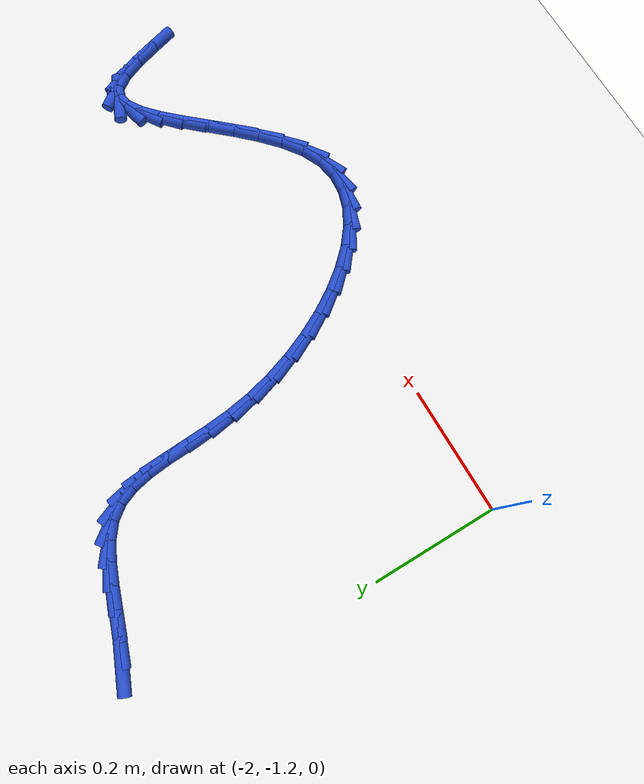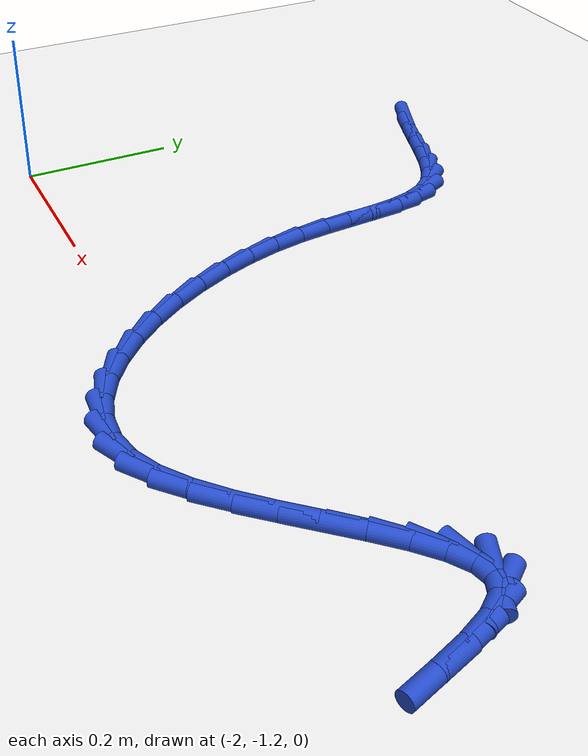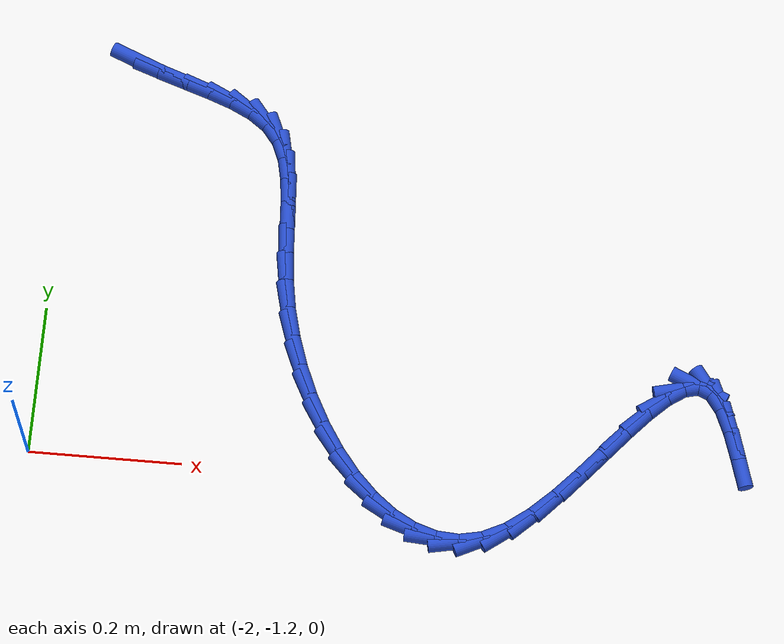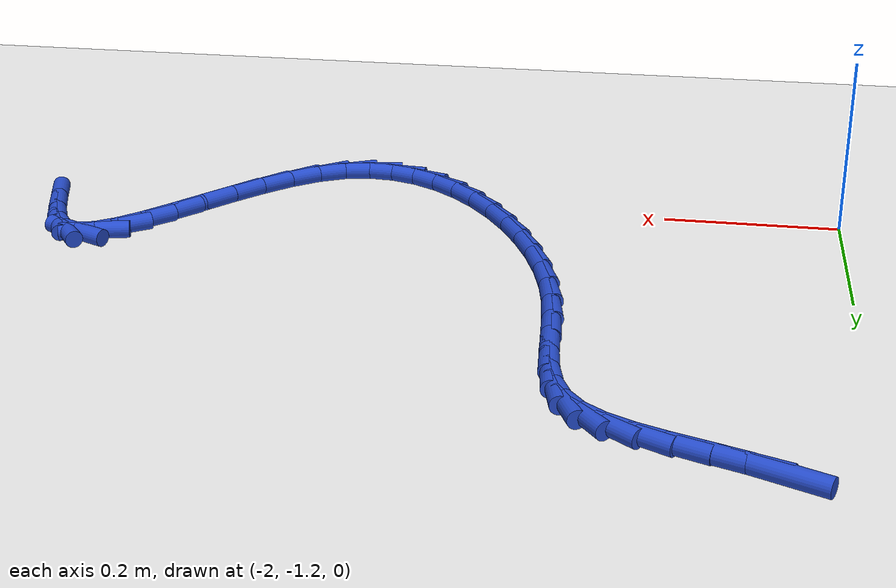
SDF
<sdf version="1.6">
 <world name="default">
  <model name="ground_plane">
   <static>1</static>
   <link name="link">
    <collision name="collision">
     <geometry><plane><normal>0 0 1</normal><size>100 100</size></plane></geometry>
     <surface><friction><ode><mu>100</mu><mu2>50</mu2></ode></friction></surface>
    </collision>
    <visual name="visual">
     <cast_shadows>0</cast_shadows>
     <geometry><plane><normal>0 0 1</normal><size>100 100</size></plane></geometry>
     <material>
      <script><uri>file://media/materials/scripts/gazebo.material</uri><name>Gazebo/WhiteGlow</name></script>
     </material>
    </visual>
   </link>
  </model>
  <model name="line">
   <link name="link_141">
    <pose>-1.915748877868359 -0.6378350076902638 0.01 0 1.57 -0.39813669396778545</pose>
    <collision name="collision">
     <geometry><cylinder><radius>0.01</radius><length>0.08</length></cylinder></geometry>
    </collision>
    <visual name="visual">
     <material>
      <script><name>Gazebo/Blue</name><uri>file://media/materials/scripts/gazebo.material</uri></script>
     </material>
     <geometry><cylinder><radius>0.01</radius><length>0.08</length></cylinder></geometry>
    </visual>
   </link>
   <link name="link_142">
    <pose>-1.8829150893552367 -0.6516448520386567 0.01 0 1.57 -0.3397191969225574</pose>
    <collision name="collision">
     <geometry><cylinder><radius>0.01</radius><length>0.08</length></cylinder></geometry>
    </collision>
    <visual name="visual">
     <material>
      <script><name>Gazebo/Blue</name><uri>file://media/materials/scripts/gazebo.material</uri></script>
     </material>
     <geometry><cylinder><radius>0.01</radius><length>0.08</length></cylinder></geometry>
    </visual>
   </link>
   <link name="link_143">
    <pose>-1.8490331317932718 -0.6636194463289576 0.01 0 1.57 -0.3283420663688</pose>
    <collision name="collision">
     <geometry><cylinder><radius>0.01</radius><length>0.08</length></cylinder></geometry>
    </collision>
    <visual name="visual">
     <material>
      <script><name>Gazebo/Blue</name><uri>file://media/materials/scripts/gazebo.material</uri></script>
     </material>
     <geometry><cylinder><radius>0.01</radius><length>0.08</length></cylinder></geometry>
    </visual>
   </link>
   <link name="link_144">
    <pose>-1.8156224999918578 -0.6750015621782965 0.01 0 1.57 -0.3657275896447229</pose>
    <collision name="collision">
     <geometry><cylinder><radius>0.01</radius><length>0.08</length></cylinder></geometry>
    </collision>
    <visual name="visual">
     <material>
      <script><name>Gazebo/Blue</name><uri>file://media/materials/scripts/gazebo.material</uri></script>
     </material>
     <geometry><cylinder><radius>0.01</radius><length>0.08</length></cylinder></geometry>
    </visual>
   </link>
   <link name="link_145">
    <pose>-1.7842026887603841 -0.6870339712038024 0.01 0 1.57 -0.46280814166327583</pose>
    <collision name="collision">
     <geometry><cylinder><radius>0.01</radius><length>0.08</length></cylinder></geometry>
    </collision>
    <visual name="visual">
     <material>
      <script><name>Gazebo/Blue</name><uri>file://media/materials/scripts/gazebo.material</uri></script>
     </material>
     <geometry><cylinder><radius>0.01</radius><length>0.08</length></cylinder></geometry>
    </visual>
   </link>
   <link name="link_146">
    <pose>-1.756293192908245 -0.7009594450226053 0.01 0 1.57 -0.6407414192629504</pose>
    <collision name="collision">
     <geometry><cylinder><radius>0.01</radius><length>0.08</length></cylinder></geometry>
    </collision>
    <visual name="visual">
     <material>
      <script><name>Gazebo/Blue</name><uri>file://media/materials/scripts/gazebo.material</uri></script>
     </material>
     <geometry><cylinder><radius>0.01</radius><length>0.08</length></cylinder></geometry>
    </visual>
   </link>
   <link name="link_147">
    <pose>-1.7334135072448302 -0.7180207552518354 0.01 0 1.57 -0.9110355380886698</pose>
    <collision name="collision">
     <geometry><cylinder><radius>0.01</radius><length>0.08</length></cylinder></geometry>
    </collision>
    <visual name="visual">
     <material>
      <script><name>Gazebo/Blue</name><uri>file://media/materials/scripts/gazebo.material</uri></script>
     </material>
     <geometry><cylinder><radius>0.01</radius><length>0.08</length></cylinder></geometry>
    </visual>
   </link>
   <link name="link_148">
    <pose>-1.716877069536478 -0.7393382432084953 0.01 0 1.57 -1.1748204426788054</pose>
    <collision name="collision">
     <geometry><cylinder><radius>0.01</radius><length>0.08</length></cylinder></geometry>
    </collision>
    <visual name="visual">
     <material>
      <script><name>Gazebo/Blue</name><uri>file://media/materials/scripts/gazebo.material</uri></script>
     </material>
     <geometry><cylinder><radius>0.01</radius><length>0.08</length></cylinder></geometry>
    </visual>
   </link>
   <link name="link_149">
    <pose>-1.7061710595787944 -0.7649471656711134 0.01 0 1.57 -1.3580901704448354</pose>
    <collision name="collision">
     <geometry><cylinder><radius>0.01</radius><length>0.08</length></cylinder></geometry>
    </collision>
    <visual name="visual">
     <material>
      <script><name>Gazebo/Blue</name><uri>file://media/materials/scripts/gazebo.material</uri></script>
     </material>
     <geometry><cylinder><radius>0.01</radius><length>0.08</length></cylinder></geometry>
    </visual>
   </link>
   <link name="link_150">
    <pose>-1.6998282423376037 -0.7943157068623753 0.01 0 1.57 -1.4651758437834688</pose>
    <collision name="collision">
     <geometry><cylinder><radius>0.01</radius><length>0.08</length></cylinder></geometry>
    </collision>
    <visual name="visual">
     <material>
      <script><name>Gazebo/Blue</name><uri>file://media/materials/scripts/gazebo.material</uri></script>
     </material>
     <geometry><cylinder><radius>0.01</radius><length>0.08</length></cylinder></geometry>
    </visual>
   </link>
   <link name="link_151">
    <pose>-1.6963730648596238 -0.8269071088524556 0.01 0 1.57 -1.5129461188483098</pose>
    <collision name="collision">
     <geometry><cylinder><radius>0.01</radius><length>0.08</length></cylinder></geometry>
    </collision>
    <visual name="visual">
     <material>
      <script><name>Gazebo/Blue</name><uri>file://media/materials/scripts/gazebo.material</uri></script>
     </material>
     <geometry><cylinder><radius>0.01</radius><length>0.08</length></cylinder></geometry>
    </visual>
   </link>
   <link name="link_152">
    <pose>-1.6943299741915714 -0.862184613711529 0.01 0 1.57 -1.5145710087415014</pose>
    <collision name="collision">
     <geometry><cylinder><radius>0.01</radius><length>0.08</length></cylinder></geometry>
    </collision>
    <visual name="visual">
     <material>
      <script><name>Gazebo/Blue</name><uri>file://media/materials/scripts/gazebo.material</uri></script>
     </material>
     <geometry><cylinder><radius>0.01</radius><length>0.08</length></cylinder></geometry>
    </visual>
   </link>
   <link name="link_153">
    <pose>-1.6922234173801647 -0.899611463509771 0.01 0 1.57 -1.4776844732806094</pose>
    <collision name="collision">
     <geometry><cylinder><radius>0.01</radius><length>0.08</length></cylinder></geometry>
    </collision>
    <visual name="visual">
     <material>
      <script><name>Gazebo/Blue</name><uri>file://media/materials/scripts/gazebo.material</uri></script>
     </material>
     <geometry><cylinder><radius>0.01</radius><length>0.08</length></cylinder></geometry>
    </visual>
   </link>
   <link name="link_154">
    <pose>-1.688577841472122 -0.9386509003173564 0.01 0 1.57 -1.4069854837124873</pose>
    <collision name="collision">
     <geometry><cylinder><radius>0.01</radius><length>0.08</length></cylinder></geometry>
    </collision>
    <visual name="visual">
     <material>
      <script><name>Gazebo/Blue</name><uri>file://media/materials/scripts/gazebo.material</uri></script>
     </material>
     <geometry><cylinder><radius>0.01</radius><length>0.08</length></cylinder></geometry>
    </visual>
   </link>
   <link name="link_155">
    <pose>-1.6819477778066425 -0.9787621254791836 0.01 0 1.57 -1.3232060243476644</pose>
    <collision name="collision">
     <geometry><cylinder><radius>0.01</radius><length>0.08</length></cylinder></geometry>
    </collision>
    <visual name="visual">
     <material>
      <script><name>Gazebo/Blue</name><uri>file://media/materials/scripts/gazebo.material</uri></script>
     </material>
     <geometry><cylinder><radius>0.01</radius><length>0.08</length></cylinder></geometry>
    </visual>
   </link>
   <link name="link_156">
    <pose>-1.6717020186468894 -1.019294974141845 0.01 0 1.57 -1.2443713738966709</pose>
    <collision name="collision">
     <geometry><cylinder><radius>0.01</radius><length>0.08</length></cylinder></geometry>
    </collision>
    <visual name="visual">
     <material>
      <script><name>Gazebo/Blue</name><uri>file://media/materials/scripts/gazebo.material</uri></script>
     </material>
     <geometry><cylinder><radius>0.01</radius><length>0.08</length></cylinder></geometry>
    </visual>
   </link>
   <link name="link_157">
    <pose>-1.658097996101397 -1.0594799251636853 0.01 0 1.57 -1.1676529676337564</pose>
    <collision name="collision">
     <geometry><cylinder><radius>0.01</radius><length>0.08</length></cylinder></geometry>
    </collision>
    <visual name="visual">
     <material>
      <script><name>Gazebo/Blue</name><uri>file://media/materials/scripts/gazebo.material</uri></script>
     </material>
     <geometry><cylinder><radius>0.01</radius><length>0.08</length></cylinder></geometry>
    </visual>
   </link>
   <link name="link_158">
    <pose>-1.6414381379951821 -1.0985414138728902 0.01 0 1.57 -1.0893982662749107</pose>
    <collision name="collision">
     <geometry><cylinder><radius>0.01</radius><length>0.08</length></cylinder></geometry>
    </collision>
    <visual name="visual">
     <material>
      <script><name>Gazebo/Blue</name><uri>file://media/materials/scripts/gazebo.material</uri></script>
     </material>
     <geometry><cylinder><radius>0.01</radius><length>0.08</length></cylinder></geometry>
    </visual>
   </link>
   <link name="link_159">
    <pose>-1.6220248721532597 -1.1357038755976454 0.01 0 1.57 -1.0057732672807587</pose>
    <collision name="collision">
     <geometry><cylinder><radius>0.01</radius><length>0.08</length></cylinder></geometry>
    </collision>
    <visual name="visual">
     <material>
      <script><name>Gazebo/Blue</name><uri>file://media/materials/scripts/gazebo.material</uri></script>
     </material>
     <geometry><cylinder><radius>0.01</radius><length>0.08</length></cylinder></geometry>
    </visual>
   </link>
   <link name="link_160">
    <pose>-1.6001606264006458 -1.1701917456661353 0.01 0 1.57 -0.9123207454091354</pose>
    <collision name="collision">
     <geometry><cylinder><radius>0.01</radius><length>0.08</length></cylinder></geometry>
    </collision>
    <visual name="visual">
     <material>
      <script><name>Gazebo/Blue</name><uri>file://media/materials/scripts/gazebo.material</uri></script>
     </material>
     <geometry><cylinder><radius>0.01</radius><length>0.08</length></cylinder></geometry>
    </visual>
   </link>
   <link name="link_161">
    <pose>-1.5761478285623565 -1.2012294594065467 0.01 0 1.57 -0.8034910073511081</pose>
    <collision name="collision">
     <geometry><cylinder><radius>0.01</radius><length>0.08</length></cylinder></geometry>
    </collision>
    <visual name="visual">
     <material>
      <script><name>Gazebo/Blue</name><uri>file://media/materials/scripts/gazebo.material</uri></script>
     </material>
     <geometry><cylinder><radius>0.01</radius><length>0.08</length></cylinder></geometry>
    </visual>
   </link>
   <link name="link_162">
    <pose>-1.5502889064634053 -1.2280414521470644 0.01 0 1.57 -0.6722574508313844</pose>
    <collision name="collision">
     <geometry><cylinder><radius>0.01</radius><length>0.08</length></cylinder></geometry>
    </collision>
    <visual name="visual">
     <material>
      <script><name>Gazebo/Blue</name><uri>file://media/materials/scripts/gazebo.material</uri></script>
     </material>
     <geometry><cylinder><radius>0.01</radius><length>0.08</length></cylinder></geometry>
    </visual>
   </link>
   <link name="link_163">
    <pose>-1.5228862879288112 -1.249852159215873 0.01 0 1.57 -0.5103097050251828</pose>
    <collision name="collision">
     <geometry><cylinder><radius>0.01</radius><length>0.08</length></cylinder></geometry>
    </collision>
    <visual name="visual">
     <material>
      <script><name>Gazebo/Blue</name><uri>file://media/materials/scripts/gazebo.material</uri></script>
     </material>
     <geometry><cylinder><radius>0.01</radius><length>0.08</length></cylinder></geometry>
    </visual>
   </link>
   <link name="link_164">
    <pose>-1.4942424007835884 -1.265886015941158 0.01 0 1.57 -0.3101618729458923</pose>
    <collision name="collision">
     <geometry><cylinder><radius>0.01</radius><length>0.08</length></cylinder></geometry>
    </collision>
    <visual name="visual">
     <material>
      <script><name>Gazebo/Blue</name><uri>file://media/materials/scripts/gazebo.material</uri></script>
     </material>
     <geometry><cylinder><radius>0.01</radius><length>0.08</length></cylinder></geometry>
    </visual>
   </link>
   <link name="link_165">
    <pose>-1.464659672852752 -1.2753674576511052 0.01 0 1.57 -0.07114126297625253</pose>
    <collision name="collision">
     <geometry><cylinder><radius>0.01</radius><length>0.08</length></cylinder></geometry>
    </collision>
    <visual name="visual">
     <material>
      <script><name>Gazebo/Blue</name><uri>file://media/materials/scripts/gazebo.material</uri></script>
     </material>
     <geometry><cylinder><radius>0.01</radius><length>0.08</length></cylinder></geometry>
    </visual>
   </link>
   <link name="link_166">
    <pose>-1.4344405319613185 -1.2775209196739 0.01 0 1.57 0.19233804229493395</pose>
    <collision name="collision">
     <geometry><cylinder><radius>0.01</radius><length>0.08</length></cylinder></geometry>
    </collision>
    <visual name="visual">
     <material>
      <script><name>Gazebo/Blue</name><uri>file://media/materials/scripts/gazebo.material</uri></script>
     </material>
     <geometry><cylinder><radius>0.01</radius><length>0.08</length></cylinder></geometry>
    </visual>
   </link>
   <link name="link_167">
    <pose>-1.4038874059343034 -1.2715708373377275 0.01 0 1.57 0.4479589299067039</pose>
    <collision name="collision">
     <geometry><cylinder><radius>0.01</radius><length>0.08</length></cylinder></geometry>
    </collision>
    <visual name="visual">
     <material>
      <script><name>Gazebo/Blue</name><uri>file://media/materials/scripts/gazebo.material</uri></script>
     </material>
     <geometry><cylinder><radius>0.01</radius><length>0.08</length></cylinder></geometry>
    </visual>
   </link>
   <link name="link_168">
    <pose>-1.3733003415359244 -1.2568725231787434 0.01 0 1.57 0.636106298609566</pose>
    <collision name="collision">
     <geometry><cylinder><radius>0.01</radius><length>0.08</length></cylinder></geometry>
    </collision>
    <visual name="visual">
     <material>
      <script><name>Gazebo/Blue</name><uri>file://media/materials/scripts/gazebo.material</uri></script>
     </material>
     <geometry><cylinder><radius>0.01</radius><length>0.08</length></cylinder></geometry>
    </visual>
   </link>
   <link name="link_169">
    <pose>-1.3429488865104984 -1.2344576965567289 0.01 0 1.57 0.752062088042691</pose>
    <collision name="collision">
     <geometry><cylinder><radius>0.01</radius><length>0.08</length></cylinder></geometry>
    </collision>
    <visual name="visual">
     <material>
      <script><name>Gazebo/Blue</name><uri>file://media/materials/scripts/gazebo.material</uri></script>
     </material>
     <geometry><cylinder><radius>0.01</radius><length>0.08</length></cylinder></geometry>
    </visual>
   </link>
   <link name="link_170">
    <pose>-1.3130814847701207 -1.2065180684790293 0.01 0 1.57 0.8203960953758486</pose>
    <collision name="collision">
     <geometry><cylinder><radius>0.01</radius><length>0.08</length></cylinder></geometry>
    </collision>
    <visual name="visual">
     <material>
      <script><name>Gazebo/Blue</name><uri>file://media/materials/scripts/gazebo.material</uri></script>
     </material>
     <geometry><cylinder><radius>0.01</radius><length>0.08</length></cylinder></geometry>
    </visual>
   </link>
   <link name="link_171">
    <pose>-1.2839461584443763 -1.1752685336186715 0.01 0 1.57 0.8545329916321949</pose>
    <collision name="collision">
     <geometry><cylinder><radius>0.01</radius><length>0.08</length></cylinder></geometry>
    </collision>
    <visual name="visual">
     <material>
      <script><name>Gazebo/Blue</name><uri>file://media/materials/scripts/gazebo.material</uri></script>
     </material>
     <geometry><cylinder><radius>0.01</radius><length>0.08</length></cylinder></geometry>
    </visual>
   </link>
   <link name="link_172">
    <pose>-1.2557909296628484 -1.1429239866486776 0.01 0 1.57 0.8591664560421899</pose>
    <collision name="collision">
     <geometry><cylinder><radius>0.01</radius><length>0.08</length></cylinder></geometry>
    </collision>
    <visual name="visual">
     <material>
      <script><name>Gazebo/Blue</name><uri>file://media/materials/scripts/gazebo.material</uri></script>
     </material>
     <geometry><cylinder><radius>0.01</radius><length>0.08</length></cylinder></geometry>
    </visual>
   </link>
   <link name="link_173">
    <pose>-1.2288638205551212 -1.1116993222420728 0.01 0 1.57 0.8310896394774674</pose>
    <collision name="collision">
     <geometry><cylinder><radius>0.01</radius><length>0.08</length></cylinder></geometry>
    </collision>
    <visual name="visual">
     <material>
      <script><name>Gazebo/Blue</name><uri>file://media/materials/scripts/gazebo.material</uri></script>
     </material>
     <geometry><cylinder><radius>0.01</radius><length>0.08</length></cylinder></geometry>
    </visual>
   </link>
   <link name="link_174">
    <pose>-1.2034128532507782 -1.0838094350718805 0.01 0 1.57 0.7553078809649043</pose>
    <collision name="collision">
     <geometry><cylinder><radius>0.01</radius><length>0.08</length></cylinder></geometry>
    </collision>
    <visual name="visual">
     <material>
      <script><name>Gazebo/Blue</name><uri>file://media/materials/scripts/gazebo.material</uri></script>
     </material>
     <geometry><cylinder><radius>0.01</radius><length>0.08</length></cylinder></geometry>
    </visual>
   </link>
   <link name="link_175">
    <pose>-1.179686049879403 -1.0614692198111255 0.01 0 1.57 0.5903084944244039</pose>
    <collision name="collision">
     <geometry><cylinder><radius>0.01</radius><length>0.08</length></cylinder></geometry>
    </collision>
    <visual name="visual">
     <material>
      <script><name>Gazebo/Blue</name><uri>file://media/materials/scripts/gazebo.material</uri></script>
     </material>
     <geometry><cylinder><radius>0.01</radius><length>0.08</length></cylinder></geometry>
    </visual>
   </link>
   <link name="link_176">
    <pose>-1.1579314325705794 -1.0468935711328318 0.01 0 1.57 0.23108367578131236</pose>
    <collision name="collision">
     <geometry><cylinder><radius>0.01</radius><length>0.08</length></cylinder></geometry>
    </collision>
    <visual name="visual">
     <material>
      <script><name>Gazebo/Blue</name><uri>file://media/materials/scripts/gazebo.material</uri></script>
     </material>
     <geometry><cylinder><radius>0.01</radius><length>0.08</length></cylinder></geometry>
    </visual>
   </link>
   <link name="link_177">
    <pose>-1.1383970234538905 -1.042297383710023 0.01 0 1.57 -0.41871036421918817</pose>
    <collision name="collision">
     <geometry><cylinder><radius>0.01</radius><length>0.08</length></cylinder></geometry>
    </collision>
    <visual name="visual">
     <material>
      <script><name>Gazebo/Blue</name><uri>file://media/materials/scripts/gazebo.material</uri></script>
     </material>
     <geometry><cylinder><radius>0.01</radius><length>0.08</length></cylinder></geometry>
    </visual>
   </link>
   <link name="link_178">
    <pose>-1.121330371761175 -1.0498924978864048 0.01 0 1.57 -0.9520196052500299</pose>
    <collision name="collision">
     <geometry><cylinder><radius>0.01</radius><length>0.08</length></cylinder></geometry>
    </collision>
    <visual name="visual">
     <material>
      <script><name>Gazebo/Blue</name><uri>file://media/materials/scripts/gazebo.material</uri></script>
     </material>
     <geometry><cylinder><radius>0.01</radius><length>0.08</length></cylinder></geometry>
    </visual>
   </link>
   <link name="link_179">
    <pose>-1.106744554830758 -1.0703763581688965 0.01 0 1.57 -1.1715290536099539</pose>
    <collision name="collision">
     <geometry><cylinder><radius>0.01</radius><length>0.08</length></cylinder></geometry>
    </collision>
    <visual name="visual">
     <material>
      <script><name>Gazebo/Blue</name><uri>file://media/materials/scripts/gazebo.material</uri></script>
     </material>
     <geometry><cylinder><radius>0.01</radius><length>0.08</length></cylinder></geometry>
    </visual>
   </link>
   <link name="link_180">
    <pose>-1.0940397161576607 -1.1004876213111017 0.01 0 1.57 -1.2597189709105514</pose>
    <collision name="collision">
     <geometry><cylinder><radius>0.01</radius><length>0.08</length></cylinder></geometry>
    </collision>
    <visual name="visual">
     <material>
      <script><name>Gazebo/Blue</name><uri>file://media/materials/scripts/gazebo.material</uri></script>
     </material>
     <geometry><cylinder><radius>0.01</radius><length>0.08</length></cylinder></geometry>
    </visual>
   </link>
   <link name="link_181">
    <pose>-1.0825170847658394 -1.1363260800179915 0.01 0 1.57 -1.2856951511654866</pose>
    <collision name="collision">
     <geometry><cylinder><radius>0.01</radius><length>0.08</length></cylinder></geometry>
    </collision>
    <visual name="visual">
     <material>
      <script><name>Gazebo/Blue</name><uri>file://media/materials/scripts/gazebo.material</uri></script>
     </material>
     <geometry><cylinder><radius>0.01</radius><length>0.08</length></cylinder></geometry>
    </visual>
   </link>
  </model>
 </world>
</sdf>
